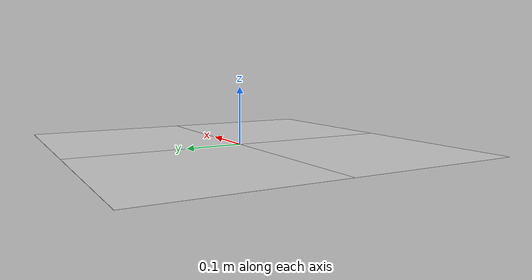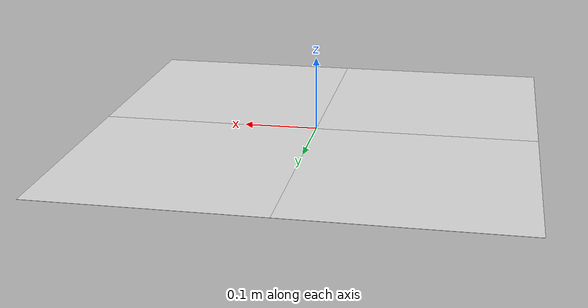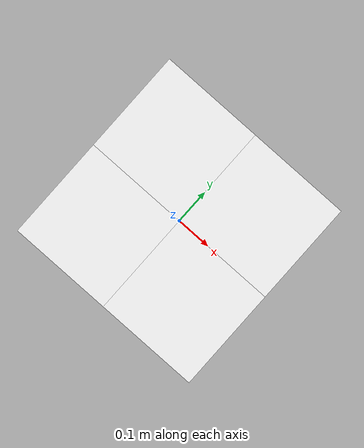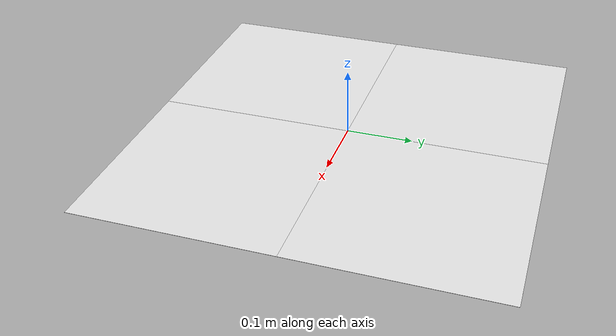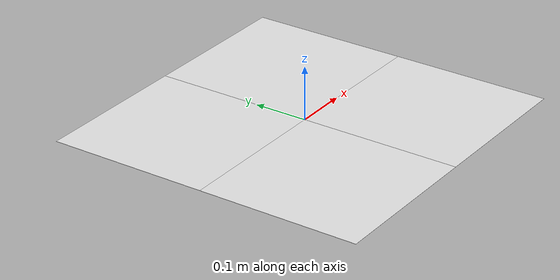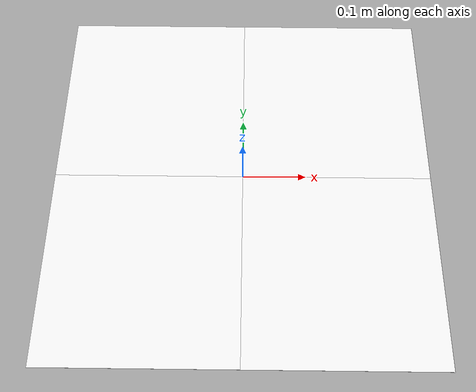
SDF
<?xml version="1.0"?>
<sdf version="1.6">
  <model name="apriltag_36h11_board_2x2">
    <static>true</static>

    <link name="tag_0_link">
      <pose>-0.15 0.15 0 0 0 0</pose>
      <visual name="tag_0_visual">
        <cast_shadows>false</cast_shadows>
        <geometry>
          <plane>
            <normal>0 0 1</normal>
            <size>0.30 0.30</size>
          </plane>
        </geometry>
        <material>
          <script>
            <uri>model://apriltag_36h11_board_2x2/materials/scripts</uri>
            <uri>model://apriltag_36h11_board_2x2/materials/textures</uri>
            <name>AprilTag36h11/Id00000</name>
          </script>
          <ambient>1 1 1 1</ambient>
          <diffuse>1 1 1 1</diffuse>
          <specular>0 0 0 1</specular>
        </material>
      </visual>
    </link>

    <link name="tag_1_link">
      <pose>0.15 0.15 0 0 0 0</pose>
      <visual name="tag_1_visual">
        <cast_shadows>false</cast_shadows>
        <geometry>
          <plane>
            <normal>0 0 1</normal>
            <size>0.30 0.30</size>
          </plane>
        </geometry>
        <material>
          <script>
            <uri>model://apriltag_36h11_board_2x2/materials/scripts</uri>
            <uri>model://apriltag_36h11_board_2x2/materials/textures</uri>
            <name>AprilTag36h11/Id00001</name>
          </script>
          <ambient>1 1 1 1</ambient>
          <diffuse>1 1 1 1</diffuse>
          <specular>0 0 0 1</specular>
        </material>
      </visual>
    </link>

    <link name="tag_2_link">
      <pose>-0.15 -0.15 0 0 0 0</pose>
      <visual name="tag_2_visual">
        <cast_shadows>false</cast_shadows>
        <geometry>
          <plane>
            <normal>0 0 1</normal>
            <size>0.30 0.30</size>
          </plane>
        </geometry>
        <material>
          <script>
            <uri>model://apriltag_36h11_board_2x2/materials/scripts</uri>
            <uri>model://apriltag_36h11_board_2x2/materials/textures</uri>
            <name>AprilTag36h11/Id00002</name>
          </script>
          <ambient>1 1 1 1</ambient>
          <diffuse>1 1 1 1</diffuse>
          <specular>0 0 0 1</specular>
        </material>
      </visual>
    </link>

    <link name="tag_3_link">
      <pose>0.15 -0.15 0 0 0 0</pose>
      <visual name="tag_3_visual">
        <cast_shadows>false</cast_shadows>
        <geometry>
          <plane>
            <normal>0 0 1</normal>
            <size>0.30 0.30</size>
          </plane>
        </geometry>
        <material>
          <script>
            <uri>model://apriltag_36h11_board_2x2/materials/scripts</uri>
            <uri>model://apriltag_36h11_board_2x2/materials/textures</uri>
            <name>AprilTag36h11/Id00003</name>
          </script>
          <ambient>1 1 1 1</ambient>
          <diffuse>1 1 1 1</diffuse>
          <specular>0 0 0 1</specular>
        </material>
      </visual>
    </link>
  </model>
</sdf>
